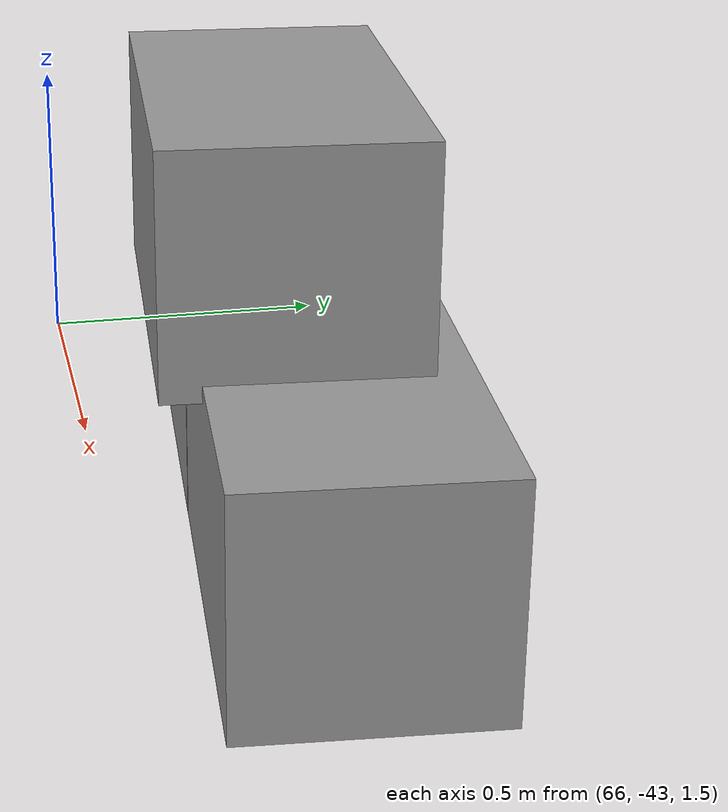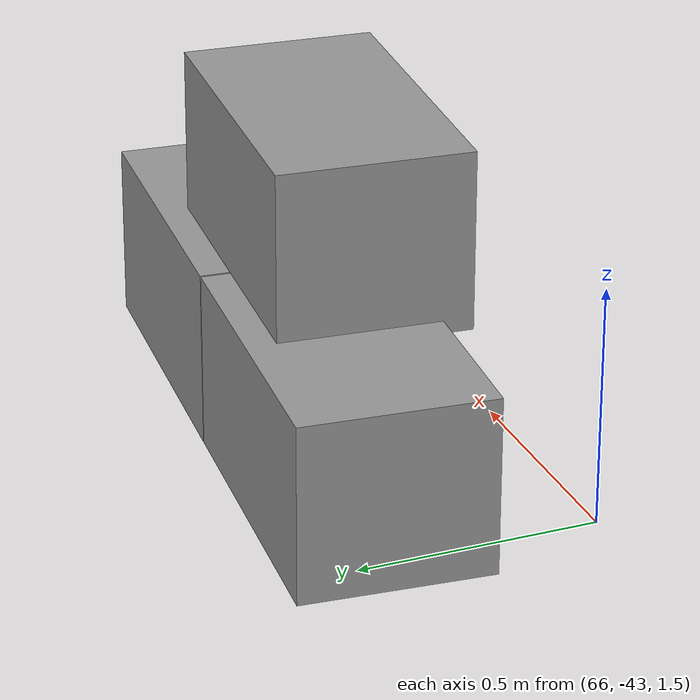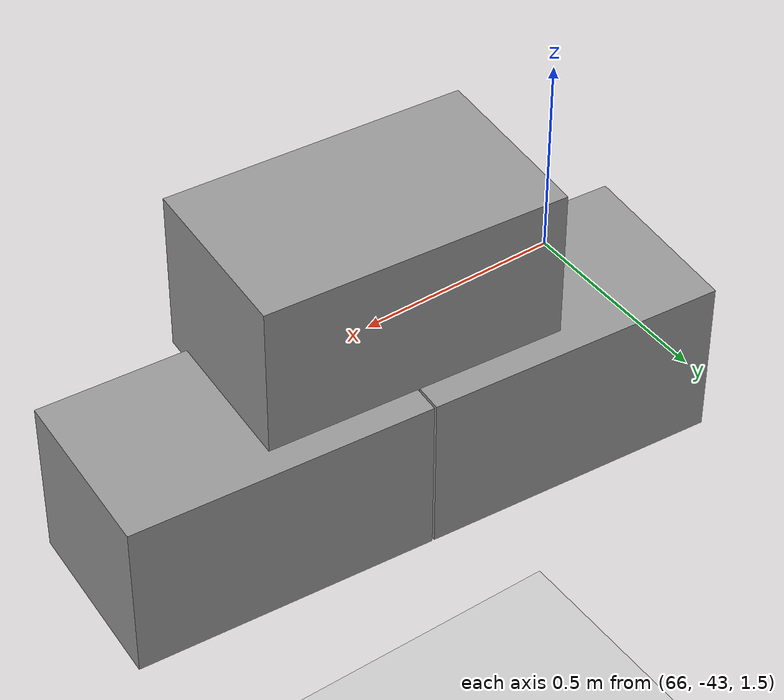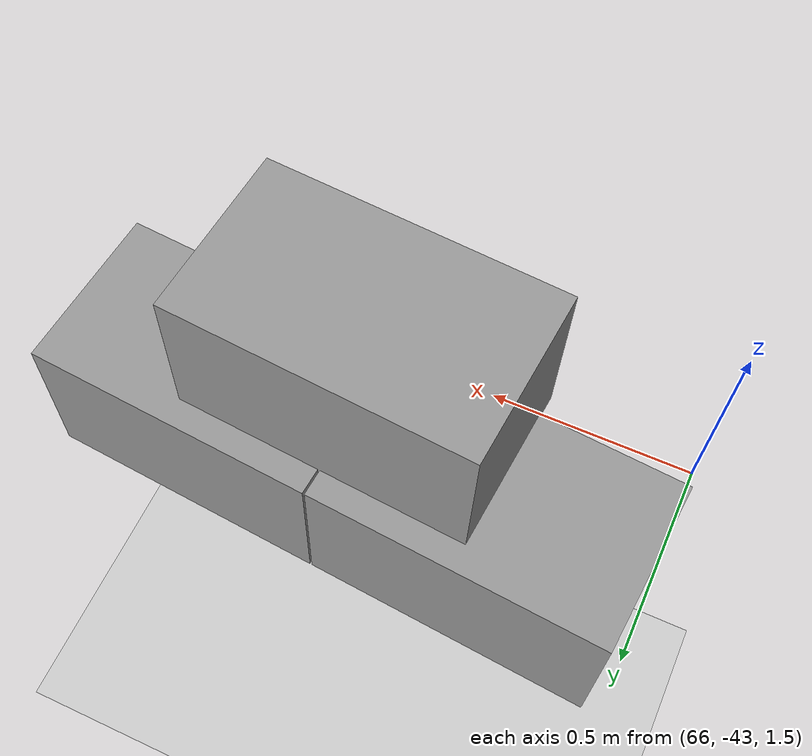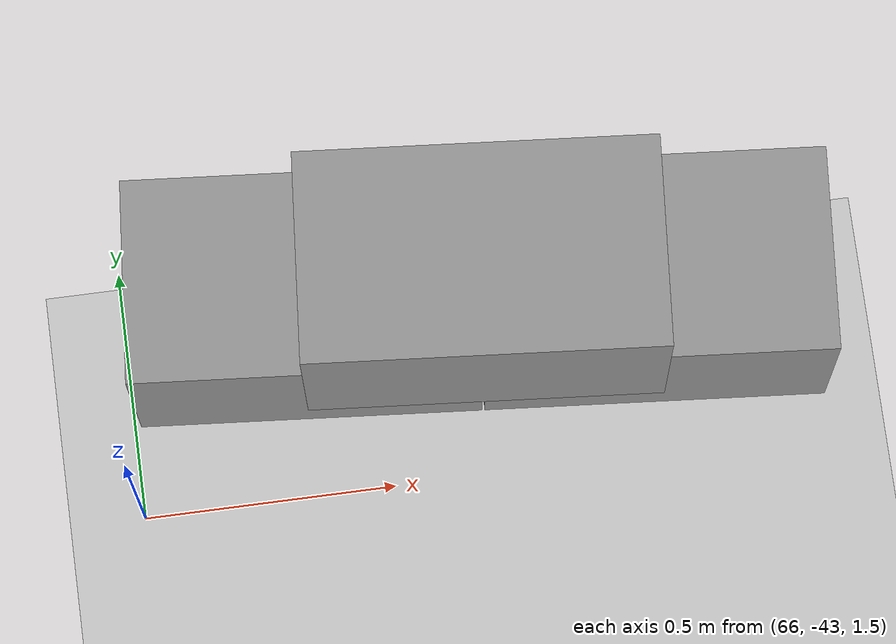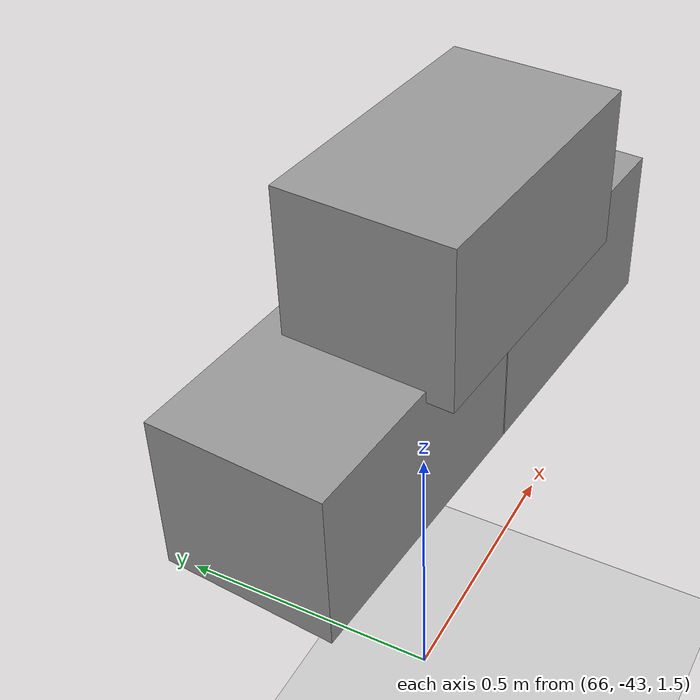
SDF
<sdf version="1.7">
 <world name="default">
  <model name="ground_plane">
   <static>1</static>
   <link name="link">
    <collision name="collision">
     <geometry><plane><normal>0 0 1</normal><size>100 100</size></plane></geometry>
     <surface>
      <contact><collide_bitmask>65535</collide_bitmask></contact>
      <friction><ode><mu>100</mu><mu2>50</mu2></ode></friction>
     </surface>
    </collision>
    <visual name="visual">
     <cast_shadows>0</cast_shadows>
     <geometry><plane><normal>0 0 1</normal><size>100 100</size></plane></geometry>
     <material>
      <script><uri>file://media/materials/scripts/gazebo.material</uri><name>Gazebo/Grey</name></script>
     </material>
    </visual>
   </link>
  </model>
  <model name="Add_Box_clone_clone_3_clone_16">
   <link name="link">
    <inertial>
     <mass>1</mass>
     <inertia>
      <ixx>0.166667</ixx>
      <ixy>0</ixy>
      <ixz>0</ixz>
      <iyy>0.166667</iyy>
      <iyz>0</iyz>
      <izz>0.166667</izz>
     </inertia>
    </inertial>
    <kinematic>1</kinematic>
    <gravity>0</gravity>
    <visual name="visual">
     <geometry><box><size>0.686 0.406 0.381</size></box></geometry>
     <material>
      <script><name>Gazebo/Grey</name><uri>file://media/materials/scripts/gazebo.material</uri></script>
      <shader type="pixel"><normal_map>__default__</normal_map></shader>
      <ambient>0.3 0.3 0.3 1</ambient>
      <diffuse>0.7 0.7 0.7 1</diffuse>
      <specular>0.01 0.01 0.01 1</specular>
      <emissive>0 0 0 1</emissive>
     </material>
    </visual>
    <collision name="collision">
     <geometry><box><size>1 1 1</size></box></geometry>
     <surface>
      <friction>
       <ode><mu>1</mu><mu2>1</mu2><fdir1>0 0 0</fdir1><slip1>0</slip1><slip2>0</slip2></ode>
       <torsional>
        <coefficient>1</coefficient>
        <patch_radius>0</patch_radius>
        <surface_radius>0</surface_radius>
        <use_patch_radius>1</use_patch_radius>
        <ode><slip>0</slip></ode>
       </torsional>
      </friction>
      <bounce><restitution_coefficient>0</restitution_coefficient><threshold>1e+06</threshold></bounce>
      <contact>
       <collide_without_contact>0</collide_without_contact>
       <collide_without_contact_bitmask>1</collide_without_contact_bitmask>
       <collide_bitmask>1</collide_bitmask>
       <ode>
        <soft_cfm>0</soft_cfm>
        <soft_erp>0.2</soft_erp>
        <kp>1e+13</kp>
        <kd>1</kd>
        <max_vel>0.01</max_vel>
        <min_depth>0</min_depth>
       </ode>
       <bullet>
        <split_impulse>1</split_impulse>
        <split_impulse_penetration_threshold>-0.01</split_impulse_penetration_threshold>
        <soft_cfm>0</soft_cfm>
        <soft_erp>0.2</soft_erp>
        <kp>1e+13</kp>
        <kd>1</kd>
       </bullet>
      </contact>
     </surface>
    </collision>
   </link>
   <link name="link_clone">
    <inertial>
     <mass>1</mass>
     <inertia>
      <ixx>0.166667</ixx>
      <ixy>0</ixy>
      <ixz>0</ixz>
      <iyy>0.166667</iyy>
      <iyz>0</iyz>
      <izz>0.166667</izz>
     </inertia>
    </inertial>
    <pose>-0.343354 -0.063316 0.354303 1e-05 -0 0</pose>
    <gravity>0</gravity>
    <visual name="visual">
     <geometry><box><size>0.686 0.406 0.381</size></box></geometry>
     <material>
      <script><name>Gazebo/Grey</name><uri>file://media/materials/scripts/gazebo.material</uri></script>
      <shader type="pixel"><normal_map>__default__</normal_map></shader>
      <ambient>0.3 0.3 0.3 1</ambient>
      <diffuse>0.7 0.7 0.7 1</diffuse>
      <specular>0.01 0.01 0.01 1</specular>
      <emissive>0 0 0 1</emissive>
     </material>
    </visual>
    <collision name="collision">
     <geometry><box><size>1 1 1</size></box></geometry>
     <surface>
      <friction>
       <ode><mu>1</mu><mu2>1</mu2><fdir1>0 0 0</fdir1><slip1>0</slip1><slip2>0</slip2></ode>
       <torsional>
        <coefficient>1</coefficient>
        <patch_radius>0</patch_radius>
        <surface_radius>0</surface_radius>
        <use_patch_radius>1</use_patch_radius>
        <ode><slip>0</slip></ode>
       </torsional>
      </friction>
      <bounce><restitution_coefficient>0</restitution_coefficient><threshold>1e+06</threshold></bounce>
      <contact>
       <collide_without_contact>0</collide_without_contact>
       <collide_without_contact_bitmask>1</collide_without_contact_bitmask>
       <collide_bitmask>1</collide_bitmask>
       <ode>
        <soft_cfm>0</soft_cfm>
        <soft_erp>0.2</soft_erp>
        <kp>1e+13</kp>
        <kd>1</kd>
        <max_vel>0.01</max_vel>
        <min_depth>0</min_depth>
       </ode>
       <bullet>
        <split_impulse>1</split_impulse>
        <split_impulse_penetration_threshold>-0.01</split_impulse_penetration_threshold>
        <soft_cfm>0</soft_cfm>
        <soft_erp>0.2</soft_erp>
        <kp>1e+13</kp>
        <kd>1</kd>
       </bullet>
      </contact>
     </surface>
    </collision>
   </link>
   <link name="link_clone_clone">
    <inertial>
     <mass>1</mass>
     <inertia>
      <ixx>0.166667</ixx>
      <ixy>0</ixy>
      <ixz>0</ixz>
      <iyy>0.166667</iyy>
      <iyz>0</iyz>
      <izz>0.166667</izz>
     </inertia>
    </inertial>
    <pose>-0.690786 -0.000183 -1e-05 2e-05 -0 0</pose>
    <gravity>0</gravity>
    <visual name="visual">
     <geometry><box><size>0.686 0.406 0.381</size></box></geometry>
     <material>
      <script><name>Gazebo/Grey</name><uri>file://media/materials/scripts/gazebo.material</uri></script>
      <shader type="pixel"><normal_map>__default__</normal_map></shader>
      <ambient>0.3 0.3 0.3 1</ambient>
      <diffuse>0.7 0.7 0.7 1</diffuse>
      <specular>0.01 0.01 0.01 1</specular>
      <emissive>0 0 0 1</emissive>
     </material>
    </visual>
    <collision name="collision">
     <geometry><box><size>1 1 1</size></box></geometry>
     <surface>
      <friction>
       <ode><mu>1</mu><mu2>1</mu2><fdir1>0 0 0</fdir1><slip1>0</slip1><slip2>0</slip2></ode>
       <torsional>
        <coefficient>1</coefficient>
        <patch_radius>0</patch_radius>
        <surface_radius>0</surface_radius>
        <use_patch_radius>1</use_patch_radius>
        <ode><slip>0</slip></ode>
       </torsional>
      </friction>
      <bounce><restitution_coefficient>0</restitution_coefficient><threshold>1e+06</threshold></bounce>
      <contact>
       <collide_without_contact>0</collide_without_contact>
       <collide_without_contact_bitmask>1</collide_without_contact_bitmask>
       <collide_bitmask>1</collide_bitmask>
       <ode>
        <soft_cfm>0</soft_cfm>
        <soft_erp>0.2</soft_erp>
        <kp>1e+13</kp>
        <kd>1</kd>
        <max_vel>0.01</max_vel>
        <min_depth>0</min_depth>
       </ode>
       <bullet>
        <split_impulse>1</split_impulse>
        <split_impulse_penetration_threshold>-0.01</split_impulse_penetration_threshold>
        <soft_cfm>0</soft_cfm>
        <soft_erp>0.2</soft_erp>
        <kp>1e+13</kp>
        <kd>1</kd>
       </bullet>
      </contact>
     </surface>
    </collision>
   </link>
   <static>0</static>
   <pose>67.0539 -42.6773 1.61518 0 0 -0.079756</pose>
  </model>
 </world>
</sdf>
